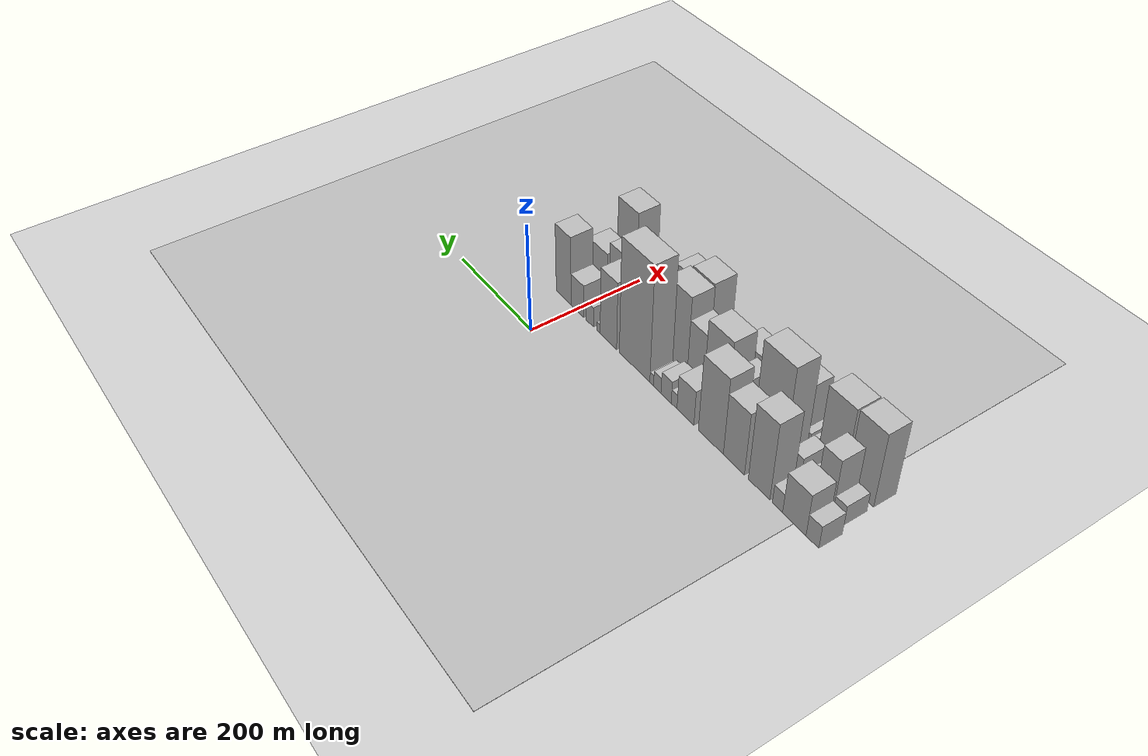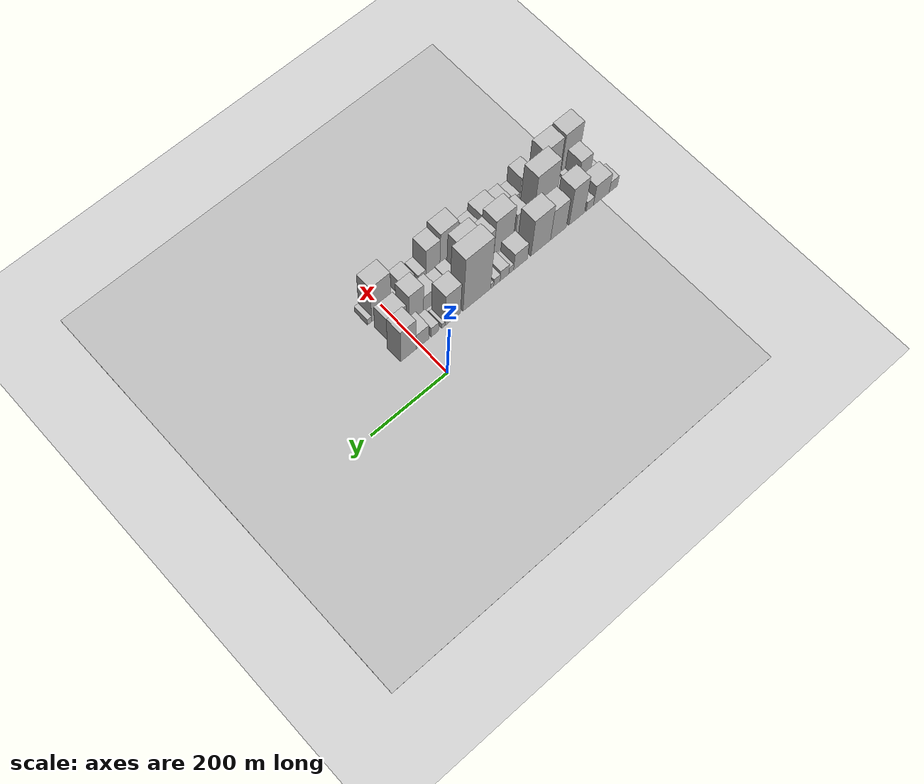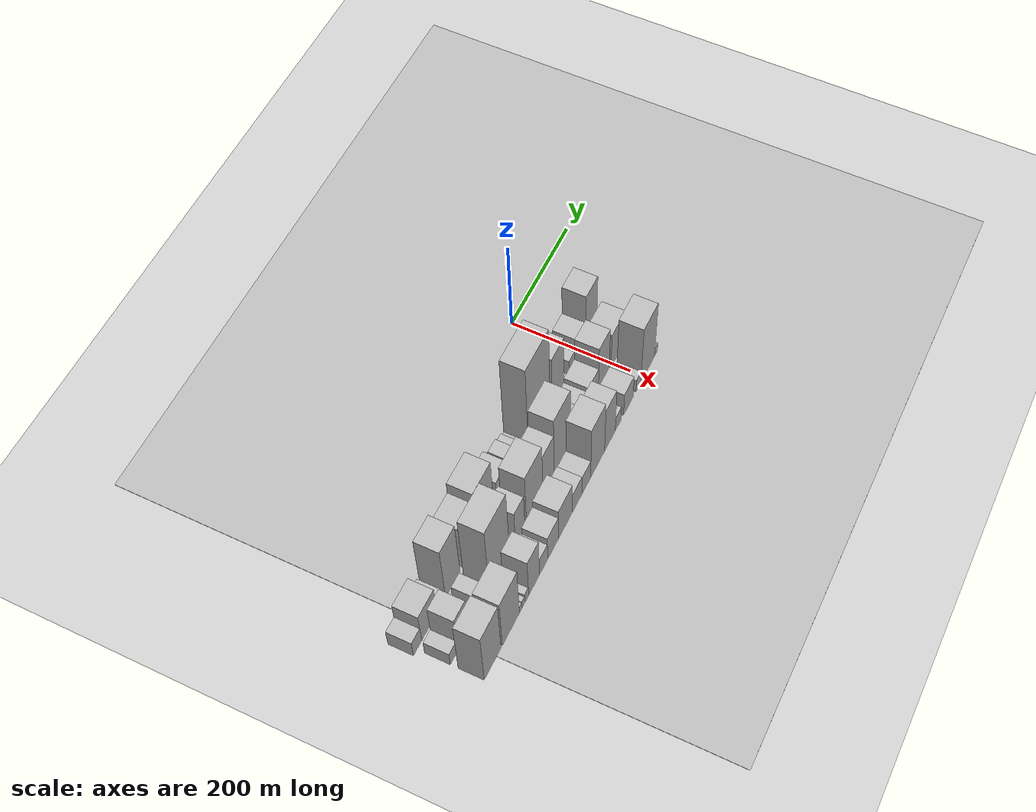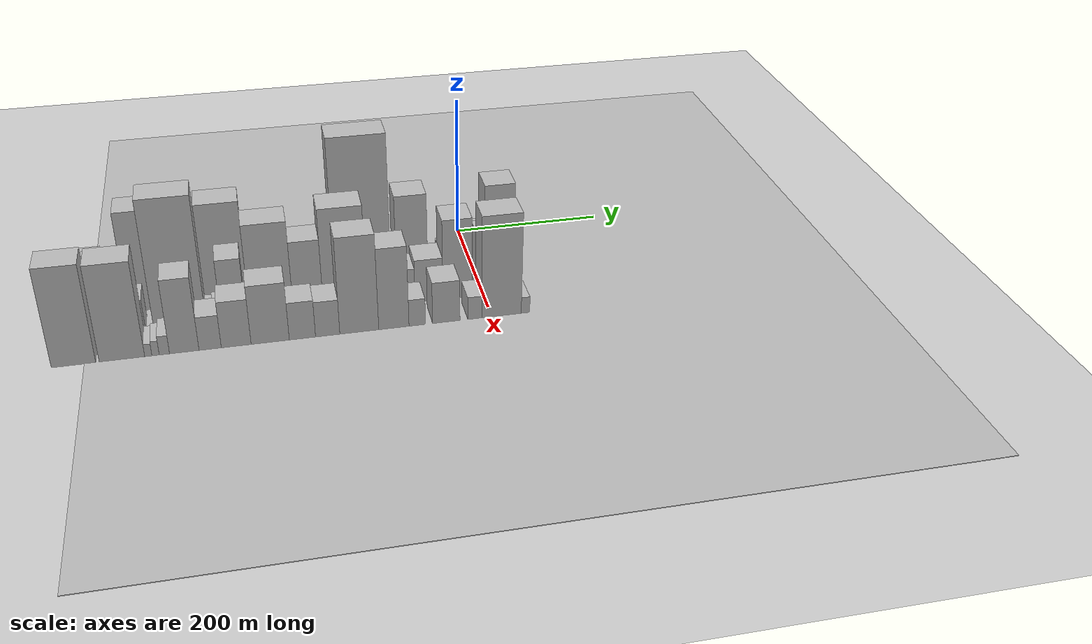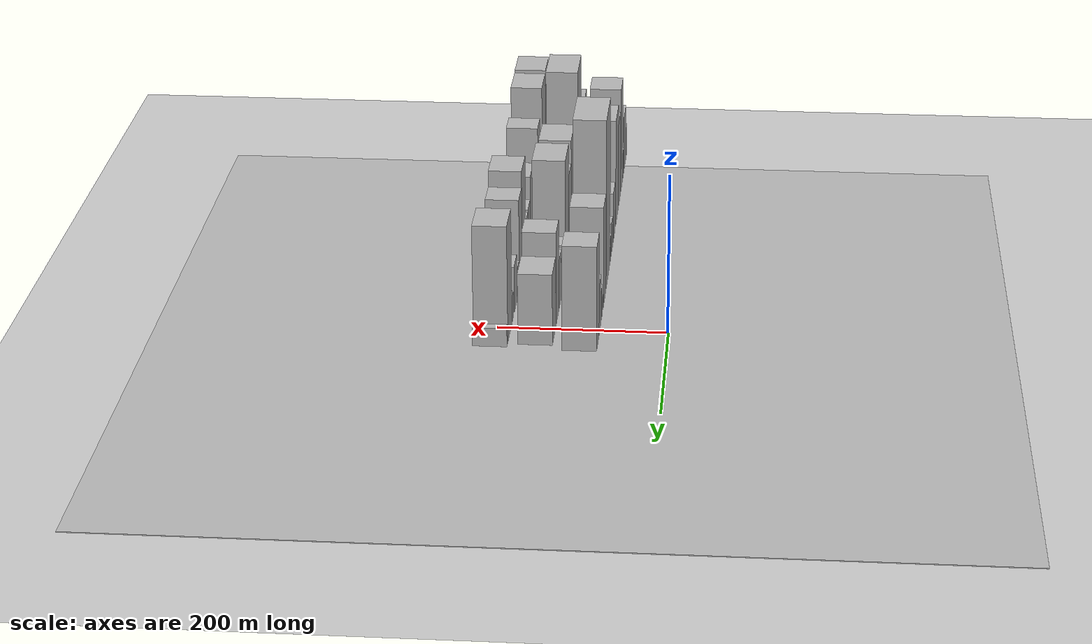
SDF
<sdf version="1.6">
 <world name="default">
  <include><name>ground_plane_1</name><uri>model://HANNAS_ground_plane</uri></include>
  <include>
   <name>ground_plane_2</name>
   <uri>model://HANNAS_ground_plane</uri>
   <pose>100 0 0  0 0 0</pose>
  </include>
  <model name="building_1">
   <static>1</static>
   <pose>100.0000 -535.8073 0 0.000000 0.000000 0.000000</pose>
   <link name="link">
    <pose>0 0 21.00 0 0 0</pose>
    <collision name="collision"><geometry><box><size>40.0000 24.3854 42.0000</size></box></geometry></collision>
    <visual name="visual">
     <cast_shadows>0</cast_shadows>
     <geometry><box><size>40.0000 24.3854 42.0000</size></box></geometry>
     <material>
      <script>
       <uri>model://HANNAS_wall/materials/scripts</uri>
       <uri>model://HANNAS_wall/materials/textures</uri>
       <name>vrc/HANNAS_wall</name>
      </script>
     </material>
    </visual>
   </link>
  </model>
  <model name="building_2">
   <static>1</static>
   <pose>100.0000 -500.7640 0 0.000000 0.000000 0.000000</pose>
   <link name="link">
    <pose>0 0 39.00 0 0 0</pose>
    <collision name="collision"><geometry><box><size>40.0000 45.7012 78.0000</size></box></geometry></collision>
    <visual name="visual">
     <cast_shadows>0</cast_shadows>
     <geometry><box><size>40.0000 45.7012 78.0000</size></box></geometry>
     <material>
      <script>
       <uri>model://HANNAS_wall/materials/scripts</uri>
       <uri>model://HANNAS_wall/materials/textures</uri>
       <name>vrc/HANNAS_wall</name>
      </script>
     </material>
    </visual>
   </link>
  </model>
  <model name="building_3">
   <static>1</static>
   <pose>100.0000 -467.7036 0 0.000000 0.000000 0.000000</pose>
   <link name="link">
    <pose>0 0 18.00 0 0 0</pose>
    <collision name="collision"><geometry><box><size>40.0000 20.4196 36.0000</size></box></geometry></collision>
    <visual name="visual">
     <cast_shadows>0</cast_shadows>
     <geometry><box><size>40.0000 20.4196 36.0000</size></box></geometry>
     <material>
      <script>
       <uri>model://HANNAS_wall/materials/scripts</uri>
       <uri>model://HANNAS_wall/materials/textures</uri>
       <name>vrc/HANNAS_wall</name>
      </script>
     </material>
    </visual>
   </link>
  </model>
  <model name="building_4">
   <static>1</static>
   <pose>100.0000 -430.3837 0 0.000000 0.000000 0.000000</pose>
   <link name="link">
    <pose>0 0 72.00 0 0 0</pose>
    <collision name="collision"><geometry><box><size>40.0000 44.2201 144.0000</size></box></geometry></collision>
    <visual name="visual">
     <cast_shadows>0</cast_shadows>
     <geometry><box><size>40.0000 44.2201 144.0000</size></box></geometry>
     <material>
      <script>
       <uri>model://HANNAS_wall/materials/scripts</uri>
       <uri>model://HANNAS_wall/materials/textures</uri>
       <name>vrc/HANNAS_wall</name>
      </script>
     </material>
    </visual>
   </link>
  </model>
  <model name="building_5">
   <static>1</static>
   <pose>100.0000 -377.8752 0 0.000000 0.000000 0.000000</pose>
   <link name="link">
    <pose>0 0 58.50 0 0 0</pose>
    <collision name="collision"><geometry><box><size>40.0000 44.7969 117.0000</size></box></geometry></collision>
    <visual name="visual">
     <cast_shadows>0</cast_shadows>
     <geometry><box><size>40.0000 44.7969 117.0000</size></box></geometry>
     <material>
      <script>
       <uri>model://HANNAS_wall/materials/scripts</uri>
       <uri>model://HANNAS_wall/materials/textures</uri>
       <name>vrc/HANNAS_wall</name>
      </script>
     </material>
    </visual>
   </link>
  </model>
  <model name="building_6">
   <static>1</static>
   <pose>100.0000 -328.0431 0 0.000000 0.000000 0.000000</pose>
   <link name="link">
    <pose>0 0 72.00 0 0 0</pose>
    <collision name="collision"><geometry><box><size>40.0000 54.8673 144.0000</size></box></geometry></collision>
    <visual name="visual">
     <cast_shadows>0</cast_shadows>
     <geometry><box><size>40.0000 54.8673 144.0000</size></box></geometry>
     <material>
      <script>
       <uri>model://HANNAS_wall/materials/scripts</uri>
       <uri>model://HANNAS_wall/materials/textures</uri>
       <name>vrc/HANNAS_wall</name>
      </script>
     </material>
    </visual>
   </link>
  </model>
  <model name="building_7">
   <static>1</static>
   <pose>100.0000 -271.3371 0 0.000000 0.000000 0.000000</pose>
   <link name="link">
    <pose>0 0 33.00 0 0 0</pose>
    <collision name="collision"><geometry><box><size>40.0000 38.5446 66.0000</size></box></geometry></collision>
    <visual name="visual">
     <cast_shadows>0</cast_shadows>
     <geometry><box><size>40.0000 38.5446 66.0000</size></box></geometry>
     <material>
      <script>
       <uri>model://HANNAS_wall/materials/scripts</uri>
       <uri>model://HANNAS_wall/materials/textures</uri>
       <name>vrc/HANNAS_wall</name>
      </script>
     </material>
    </visual>
   </link>
  </model>
  <model name="building_8">
   <static>1</static>
   <pose>100.0000 -245.4018 0 0.000000 0.000000 0.000000</pose>
   <link name="link">
    <pose>0 0 13.50 0 0 0</pose>
    <collision name="collision"><geometry><box><size>40.0000 13.3261 27.0000</size></box></geometry></collision>
    <visual name="visual">
     <cast_shadows>0</cast_shadows>
     <geometry><box><size>40.0000 13.3261 27.0000</size></box></geometry>
     <material>
      <script>
       <uri>model://HANNAS_wall/materials/scripts</uri>
       <uri>model://HANNAS_wall/materials/textures</uri>
       <name>vrc/HANNAS_wall</name>
      </script>
     </material>
    </visual>
   </link>
  </model>
  <model name="building_9">
   <static>1</static>
   <pose>100.0000 -226.7744 0 0.000000 0.000000 0.000000</pose>
   <link name="link">
    <pose>0 0 21.00 0 0 0</pose>
    <collision name="collision"><geometry><box><size>40.0000 23.9287 42.0000</size></box></geometry></collision>
    <visual name="visual">
     <cast_shadows>0</cast_shadows>
     <geometry><box><size>40.0000 23.9287 42.0000</size></box></geometry>
     <material>
      <script>
       <uri>model://HANNAS_wall/materials/scripts</uri>
       <uri>model://HANNAS_wall/materials/textures</uri>
       <name>vrc/HANNAS_wall</name>
      </script>
     </material>
    </visual>
   </link>
  </model>
  <model name="building_10">
   <static>1</static>
   <pose>100.0000 -205.9843 0 0.000000 0.000000 0.000000</pose>
   <link name="link">
    <pose>0 0 15.00 0 0 0</pose>
    <collision name="collision"><geometry><box><size>40.0000 17.6515 30.0000</size></box></geometry></collision>
    <visual name="visual">
     <cast_shadows>0</cast_shadows>
     <geometry><box><size>40.0000 17.6515 30.0000</size></box></geometry>
     <material>
      <script>
       <uri>model://HANNAS_wall/materials/scripts</uri>
       <uri>model://HANNAS_wall/materials/textures</uri>
       <name>vrc/HANNAS_wall</name>
      </script>
     </material>
    </visual>
   </link>
  </model>
  <model name="building_11">
   <static>1</static>
   <pose>100.0000 -192.7051 0 0.000000 0.000000 0.000000</pose>
   <link name="link">
    <pose>0 0 10.50 0 0 0</pose>
    <collision name="collision"><geometry><box><size>40.0000 8.9070 21.0000</size></box></geometry></collision>
    <visual name="visual">
     <cast_shadows>0</cast_shadows>
     <geometry><box><size>40.0000 8.9070 21.0000</size></box></geometry>
     <material>
      <script>
       <uri>model://HANNAS_wall/materials/scripts</uri>
       <uri>model://HANNAS_wall/materials/textures</uri>
       <name>vrc/HANNAS_wall</name>
      </script>
     </material>
    </visual>
   </link>
  </model>
  <model name="building_12">
   <static>1</static>
   <pose>100.0000 -150.8163 0 0.000000 0.000000 0.000000</pose>
   <link name="link">
    <pose>0 0 109.50 0 0 0</pose>
    <collision name="collision"><geometry><box><size>40.0000 74.8706 219.0000</size></box></geometry></collision>
    <visual name="visual">
     <cast_shadows>0</cast_shadows>
     <geometry><box><size>40.0000 74.8706 219.0000</size></box></geometry>
     <material>
      <script>
       <uri>model://HANNAS_wall/materials/scripts</uri>
       <uri>model://HANNAS_wall/materials/textures</uri>
       <name>vrc/HANNAS_wall</name>
      </script>
     </material>
    </visual>
   </link>
  </model>
  <model name="building_13">
   <static>1</static>
   <pose>100.0000 -85.3873 0 0.000000 0.000000 0.000000</pose>
   <link name="link">
    <pose>0 0 64.50 0 0 0</pose>
    <collision name="collision"><geometry><box><size>40.0000 41.9874 129.0000</size></box></geometry></collision>
    <visual name="visual">
     <cast_shadows>0</cast_shadows>
     <geometry><box><size>40.0000 41.9874 129.0000</size></box></geometry>
     <material>
      <script>
       <uri>model://HANNAS_wall/materials/scripts</uri>
       <uri>model://HANNAS_wall/materials/textures</uri>
       <name>vrc/HANNAS_wall</name>
      </script>
     </material>
    </visual>
   </link>
  </model>
  <model name="building_14">
   <static>1</static>
   <pose>100.0000 -60.3403 0 0.000000 0.000000 0.000000</pose>
   <link name="link">
    <pose>0 0 9.00 0 0 0</pose>
    <collision name="collision"><geometry><box><size>40.0000 8.1066 18.0000</size></box></geometry></collision>
    <visual name="visual">
     <cast_shadows>0</cast_shadows>
     <geometry><box><size>40.0000 8.1066 18.0000</size></box></geometry>
     <material>
      <script>
       <uri>model://HANNAS_wall/materials/scripts</uri>
       <uri>model://HANNAS_wall/materials/textures</uri>
       <name>vrc/HANNAS_wall</name>
      </script>
     </material>
    </visual>
   </link>
  </model>
  <model name="building_15">
   <static>1</static>
   <pose>100.0000 -37.4372 0 0.000000 0.000000 0.000000</pose>
   <link name="link">
    <pose>0 0 19.50 0 0 0</pose>
    <collision name="collision"><geometry><box><size>40.0000 19.6997 39.0000</size></box></geometry></collision>
    <visual name="visual">
     <cast_shadows>0</cast_shadows>
     <geometry><box><size>40.0000 19.6997 39.0000</size></box></geometry>
     <material>
      <script>
       <uri>model://HANNAS_wall/materials/scripts</uri>
       <uri>model://HANNAS_wall/materials/textures</uri>
       <name>vrc/HANNAS_wall</name>
      </script>
     </material>
    </visual>
   </link>
  </model>
  <model name="building_16">
   <static>1</static>
   <pose>100.0000 -4.4904 0 0.000000 0.000000 0.000000</pose>
   <link name="link">
    <pose>0 0 31.50 0 0 0</pose>
    <collision name="collision"><geometry><box><size>40.0000 34.1938 63.0000</size></box></geometry></collision>
    <visual name="visual">
     <cast_shadows>0</cast_shadows>
     <geometry><box><size>40.0000 34.1938 63.0000</size></box></geometry>
     <material>
      <script>
       <uri>model://HANNAS_wall/materials/scripts</uri>
       <uri>model://HANNAS_wall/materials/textures</uri>
       <name>vrc/HANNAS_wall</name>
      </script>
     </material>
    </visual>
   </link>
  </model>
  <model name="building_17">
   <static>1</static>
   <pose>100.0000 32.9341 0 0.000000 0.000000 0.000000</pose>
   <link name="link">
    <pose>0 0 66.00 0 0 0</pose>
    <collision name="collision"><geometry><box><size>40.0000 40.6553 132.0000</size></box></geometry></collision>
    <visual name="visual">
     <cast_shadows>0</cast_shadows>
     <geometry><box><size>40.0000 40.6553 132.0000</size></box></geometry>
     <material>
      <script>
       <uri>model://HANNAS_wall/materials/scripts</uri>
       <uri>model://HANNAS_wall/materials/textures</uri>
       <name>vrc/HANNAS_wall</name>
      </script>
     </material>
    </visual>
   </link>
  </model>
  <model name="building_35">
   <static>1</static>
   <pose>152.0000 -527.2593 0 0.000000 0.000000 0.000000</pose>
   <link name="link">
    <pose>0 0 18.00 0 0 0</pose>
    <collision name="collision"><geometry><box><size>40.0000 21.4814 36.0000</size></box></geometry></collision>
    <visual name="visual">
     <cast_shadows>0</cast_shadows>
     <geometry><box><size>40.0000 21.4814 36.0000</size></box></geometry>
     <material>
      <script>
       <uri>model://HANNAS_wall/materials/scripts</uri>
       <uri>model://HANNAS_wall/materials/textures</uri>
       <name>vrc/HANNAS_wall</name>
      </script>
     </material>
    </visual>
   </link>
  </model>
  <model name="building_36">
   <static>1</static>
   <pose>152.0000 -499.8316 0 0.000000 0.000000 0.000000</pose>
   <link name="link">
    <pose>0 0 51.00 0 0 0</pose>
    <collision name="collision"><geometry><box><size>40.0000 33.3740 102.0000</size></box></geometry></collision>
    <visual name="visual">
     <cast_shadows>0</cast_shadows>
     <geometry><box><size>40.0000 33.3740 102.0000</size></box></geometry>
     <material>
      <script>
       <uri>model://HANNAS_wall/materials/scripts</uri>
       <uri>model://HANNAS_wall/materials/textures</uri>
       <name>vrc/HANNAS_wall</name>
      </script>
     </material>
    </visual>
   </link>
  </model>
  <model name="building_37">
   <static>1</static>
   <pose>152.0000 -474.8939 0 0.000000 0.000000 0.000000</pose>
   <link name="link">
    <pose>0 0 15.00 0 0 0</pose>
    <collision name="collision"><geometry><box><size>40.0000 16.5013 30.0000</size></box></geometry></collision>
    <visual name="visual">
     <cast_shadows>0</cast_shadows>
     <geometry><box><size>40.0000 16.5013 30.0000</size></box></geometry>
     <material>
      <script>
       <uri>model://HANNAS_wall/materials/scripts</uri>
       <uri>model://HANNAS_wall/materials/textures</uri>
       <name>vrc/HANNAS_wall</name>
      </script>
     </material>
    </visual>
   </link>
  </model>
  <model name="building_38">
   <static>1</static>
   <pose>152.0000 -458.0006 0 0.000000 0.000000 0.000000</pose>
   <link name="link">
    <pose>0 0 10.50 0 0 0</pose>
    <collision name="collision"><geometry><box><size>40.0000 9.2854 21.0000</size></box></geometry></collision>
    <visual name="visual">
     <cast_shadows>0</cast_shadows>
     <geometry><box><size>40.0000 9.2854 21.0000</size></box></geometry>
     <material>
      <script>
       <uri>model://HANNAS_wall/materials/scripts</uri>
       <uri>model://HANNAS_wall/materials/textures</uri>
       <name>vrc/HANNAS_wall</name>
      </script>
     </material>
    </visual>
   </link>
  </model>
  <model name="building_39">
   <static>1</static>
   <pose>152.0000 -441.1442 0 0.000000 0.000000 0.000000</pose>
   <link name="link">
    <pose>0 0 24.00 0 0 0</pose>
    <collision name="collision"><geometry><box><size>40.0000 24.4274 48.0000</size></box></geometry></collision>
    <visual name="visual">
     <cast_shadows>0</cast_shadows>
     <geometry><box><size>40.0000 24.4274 48.0000</size></box></geometry>
     <material>
      <script>
       <uri>model://HANNAS_wall/materials/scripts</uri>
       <uri>model://HANNAS_wall/materials/textures</uri>
       <name>vrc/HANNAS_wall</name>
      </script>
     </material>
    </visual>
   </link>
  </model>
  <model name="building_40">
   <static>1</static>
   <pose>152.0000 -386.8442 0 0.000000 0.000000 0.000000</pose>
   <link name="link">
    <pose>0 0 93.00 0 0 0</pose>
    <collision name="collision"><geometry><box><size>40.0000 64.1726 186.0000</size></box></geometry></collision>
    <visual name="visual">
     <cast_shadows>0</cast_shadows>
     <geometry><box><size>40.0000 64.1726 186.0000</size></box></geometry>
     <material>
      <script>
       <uri>model://HANNAS_wall/materials/scripts</uri>
       <uri>model://HANNAS_wall/materials/textures</uri>
       <name>vrc/HANNAS_wall</name>
      </script>
     </material>
    </visual>
   </link>
  </model>
  <model name="building_41">
   <static>1</static>
   <pose>152.0000 -350.4336 0 0.000000 0.000000 0.000000</pose>
   <link name="link">
    <pose>0 0 10.50 0 0 0</pose>
    <collision name="collision"><geometry><box><size>40.0000 8.6485 21.0000</size></box></geometry></collision>
    <visual name="visual">
     <cast_shadows>0</cast_shadows>
     <geometry><box><size>40.0000 8.6485 21.0000</size></box></geometry>
     <material>
      <script>
       <uri>model://HANNAS_wall/materials/scripts</uri>
       <uri>model://HANNAS_wall/materials/textures</uri>
       <name>vrc/HANNAS_wall</name>
      </script>
     </material>
    </visual>
   </link>
  </model>
  <model name="building_42">
   <static>1</static>
   <pose>152.0000 -341.1399 0 0.000000 0.000000 0.000000</pose>
   <link name="link">
    <pose>0 0 12.00 0 0 0</pose>
    <collision name="collision"><geometry><box><size>40.0000 9.9389 24.0000</size></box></geometry></collision>
    <visual name="visual">
     <cast_shadows>0</cast_shadows>
     <geometry><box><size>40.0000 9.9389 24.0000</size></box></geometry>
     <material>
      <script>
       <uri>model://HANNAS_wall/materials/scripts</uri>
       <uri>model://HANNAS_wall/materials/textures</uri>
       <name>vrc/HANNAS_wall</name>
      </script>
     </material>
    </visual>
   </link>
  </model>
  <model name="building_43">
   <static>1</static>
   <pose>152.0000 -320.8174 0 0.000000 0.000000 0.000000</pose>
   <link name="link">
    <pose>0 0 46.50 0 0 0</pose>
    <collision name="collision"><geometry><box><size>40.0000 30.7062 93.0000</size></box></geometry></collision>
    <visual name="visual">
     <cast_shadows>0</cast_shadows>
     <geometry><box><size>40.0000 30.7062 93.0000</size></box></geometry>
     <material>
      <script>
       <uri>model://HANNAS_wall/materials/scripts</uri>
       <uri>model://HANNAS_wall/materials/textures</uri>
       <name>vrc/HANNAS_wall</name>
      </script>
     </material>
    </visual>
   </link>
  </model>
  <model name="building_44">
   <static>1</static>
   <pose>152.0000 -273.1800 0 0.000000 0.000000 0.000000</pose>
   <link name="link">
    <pose>0 0 69.00 0 0 0</pose>
    <collision name="collision"><geometry><box><size>40.0000 54.5685 138.0000</size></box></geometry></collision>
    <visual name="visual">
     <cast_shadows>0</cast_shadows>
     <geometry><box><size>40.0000 54.5685 138.0000</size></box></geometry>
     <material>
      <script>
       <uri>model://HANNAS_wall/materials/scripts</uri>
       <uri>model://HANNAS_wall/materials/textures</uri>
       <name>vrc/HANNAS_wall</name>
      </script>
     </material>
    </visual>
   </link>
  </model>
  <model name="building_45">
   <static>1</static>
   <pose>152.0000 -226.9275 0 0.000000 0.000000 0.000000</pose>
   <link name="link">
    <pose>0 0 54.00 0 0 0</pose>
    <collision name="collision"><geometry><box><size>40.0000 37.9365 108.0000</size></box></geometry></collision>
    <visual name="visual">
     <cast_shadows>0</cast_shadows>
     <geometry><box><size>40.0000 37.9365 108.0000</size></box></geometry>
     <material>
      <script>
       <uri>model://HANNAS_wall/materials/scripts</uri>
       <uri>model://HANNAS_wall/materials/textures</uri>
       <name>vrc/HANNAS_wall</name>
      </script>
     </material>
    </visual>
   </link>
  </model>
  <model name="building_46">
   <static>1</static>
   <pose>152.0000 -180.2325 0 0.000000 0.000000 0.000000</pose>
   <link name="link">
    <pose>0 0 75.00 0 0 0</pose>
    <collision name="collision"><geometry><box><size>40.0000 55.4535 150.0000</size></box></geometry></collision>
    <visual name="visual">
     <cast_shadows>0</cast_shadows>
     <geometry><box><size>40.0000 55.4535 150.0000</size></box></geometry>
     <material>
      <script>
       <uri>model://HANNAS_wall/materials/scripts</uri>
       <uri>model://HANNAS_wall/materials/textures</uri>
       <name>vrc/HANNAS_wall</name>
      </script>
     </material>
    </visual>
   </link>
  </model>
  <model name="building_47">
   <static>1</static>
   <pose>152.0000 -132.8605 0 0.000000 0.000000 0.000000</pose>
   <link name="link">
    <pose>0 0 27.00 0 0 0</pose>
    <collision name="collision"><geometry><box><size>40.0000 27.2906 54.0000</size></box></geometry></collision>
    <visual name="visual">
     <cast_shadows>0</cast_shadows>
     <geometry><box><size>40.0000 27.2906 54.0000</size></box></geometry>
     <material>
      <script>
       <uri>model://HANNAS_wall/materials/scripts</uri>
       <uri>model://HANNAS_wall/materials/textures</uri>
       <name>vrc/HANNAS_wall</name>
      </script>
     </material>
    </visual>
   </link>
  </model>
  <model name="building_48">
   <static>1</static>
   <pose>152.0000 -104.7523 0 0.000000 0.000000 0.000000</pose>
   <link name="link">
    <pose>0 0 25.50 0 0 0</pose>
    <collision name="collision"><geometry><box><size>40.0000 28.9257 51.0000</size></box></geometry></collision>
    <visual name="visual">
     <cast_shadows>0</cast_shadows>
     <geometry><box><size>40.0000 28.9257 51.0000</size></box></geometry>
     <material>
      <script>
       <uri>model://HANNAS_wall/materials/scripts</uri>
       <uri>model://HANNAS_wall/materials/textures</uri>
       <name>vrc/HANNAS_wall</name>
      </script>
     </material>
    </visual>
   </link>
  </model>
  <model name="building_49">
   <static>1</static>
   <pose>152.0000 -72.0137 0 0.000000 0.000000 0.000000</pose>
   <link name="link">
    <pose>0 0 31.50 0 0 0</pose>
    <collision name="collision"><geometry><box><size>40.0000 36.5515 63.0000</size></box></geometry></collision>
    <visual name="visual">
     <cast_shadows>0</cast_shadows>
     <geometry><box><size>40.0000 36.5515 63.0000</size></box></geometry>
     <material>
      <script>
       <uri>model://HANNAS_wall/materials/scripts</uri>
       <uri>model://HANNAS_wall/materials/textures</uri>
       <name>vrc/HANNAS_wall</name>
      </script>
     </material>
    </visual>
   </link>
  </model>
  <model name="building_50">
   <static>1</static>
   <pose>152.0000 -34.3291 0 0.000000 0.000000 0.000000</pose>
   <link name="link">
    <pose>0 0 58.50 0 0 0</pose>
    <collision name="collision"><geometry><box><size>40.0000 38.8177 117.0000</size></box></geometry></collision>
    <visual name="visual">
     <cast_shadows>0</cast_shadows>
     <geometry><box><size>40.0000 38.8177 117.0000</size></box></geometry>
     <material>
      <script>
       <uri>model://HANNAS_wall/materials/scripts</uri>
       <uri>model://HANNAS_wall/materials/textures</uri>
       <name>vrc/HANNAS_wall</name>
      </script>
     </material>
    </visual>
   </link>
  </model>
  <model name="building_51">
   <static>1</static>
   <pose>152.0000 16.7589 0 0.000000 0.000000 0.000000</pose>
   <link name="link">
    <pose>0 0 45.00 0 0 0</pose>
    <collision name="collision"><geometry><box><size>40.0000 49.3583 90.0000</size></box></geometry></collision>
    <visual name="visual">
     <cast_shadows>0</cast_shadows>
     <geometry><box><size>40.0000 49.3583 90.0000</size></box></geometry>
     <material>
      <script>
       <uri>model://HANNAS_wall/materials/scripts</uri>
       <uri>model://HANNAS_wall/materials/textures</uri>
       <name>vrc/HANNAS_wall</name>
      </script>
     </material>
    </visual>
   </link>
  </model>
  <model name="building_71">
   <static>1</static>
   <pose>204.0000 -512.3213 0 0.000000 0.000000 0.000000</pose>
   <link name="link">
    <pose>0 0 69.00 0 0 0</pose>
    <collision name="collision"><geometry><box><size>40.0000 51.3574 138.0000</size></box></geometry></collision>
    <visual name="visual">
     <cast_shadows>0</cast_shadows>
     <geometry><box><size>40.0000 51.3574 138.0000</size></box></geometry>
     <material>
      <script>
       <uri>model://HANNAS_wall/materials/scripts</uri>
       <uri>model://HANNAS_wall/materials/textures</uri>
       <name>vrc/HANNAS_wall</name>
      </script>
     </material>
    </visual>
   </link>
  </model>
  <model name="building_72">
   <static>1</static>
   <pose>204.0000 -455.9773 0 0.000000 0.000000 0.000000</pose>
   <link name="link">
    <pose>0 0 67.50 0 0 0</pose>
    <collision name="collision"><geometry><box><size>40.0000 53.3305 135.0000</size></box></geometry></collision>
    <visual name="visual">
     <cast_shadows>0</cast_shadows>
     <geometry><box><size>40.0000 53.3305 135.0000</size></box></geometry>
     <material>
      <script>
       <uri>model://HANNAS_wall/materials/scripts</uri>
       <uri>model://HANNAS_wall/materials/textures</uri>
       <name>vrc/HANNAS_wall</name>
      </script>
     </material>
    </visual>
   </link>
  </model>
  <model name="building_73">
   <static>1</static>
   <pose>204.0000 -425.0841 0 0.000000 0.000000 0.000000</pose>
   <link name="link">
    <pose>0 0 9.00 0 0 0</pose>
    <collision name="collision"><geometry><box><size>40.0000 8.4559 18.0000</size></box></geometry></collision>
    <visual name="visual">
     <cast_shadows>0</cast_shadows>
     <geometry><box><size>40.0000 8.4559 18.0000</size></box></geometry>
     <material>
      <script>
       <uri>model://HANNAS_wall/materials/scripts</uri>
       <uri>model://HANNAS_wall/materials/textures</uri>
       <name>vrc/HANNAS_wall</name>
      </script>
     </material>
    </visual>
   </link>
  </model>
  <model name="building_74">
   <static>1</static>
   <pose>204.0000 -416.5333 0 0.000000 0.000000 0.000000</pose>
   <link name="link">
    <pose>0 0 10.50 0 0 0</pose>
    <collision name="collision"><geometry><box><size>40.0000 8.6456 21.0000</size></box></geometry></collision>
    <visual name="visual">
     <cast_shadows>0</cast_shadows>
     <geometry><box><size>40.0000 8.6456 21.0000</size></box></geometry>
     <material>
      <script>
       <uri>model://HANNAS_wall/materials/scripts</uri>
       <uri>model://HANNAS_wall/materials/textures</uri>
       <name>vrc/HANNAS_wall</name>
      </script>
     </material>
    </visual>
   </link>
  </model>
  <model name="building_75">
   <static>1</static>
   <pose>204.0000 -406.1018 0 0.000000 0.000000 0.000000</pose>
   <link name="link">
    <pose>0 0 13.50 0 0 0</pose>
    <collision name="collision"><geometry><box><size>40.0000 12.2173 27.0000</size></box></geometry></collision>
    <visual name="visual">
     <cast_shadows>0</cast_shadows>
     <geometry><box><size>40.0000 12.2173 27.0000</size></box></geometry>
     <material>
      <script>
       <uri>model://HANNAS_wall/materials/scripts</uri>
       <uri>model://HANNAS_wall/materials/textures</uri>
       <name>vrc/HANNAS_wall</name>
      </script>
     </material>
    </visual>
   </link>
  </model>
  <model name="building_76">
   <static>1</static>
   <pose>204.0000 -382.4525 0 0.000000 0.000000 0.000000</pose>
   <link name="link">
    <pose>0 0 52.50 0 0 0</pose>
    <collision name="collision"><geometry><box><size>40.0000 35.0812 105.0000</size></box></geometry></collision>
    <visual name="visual">
     <cast_shadows>0</cast_shadows>
     <geometry><box><size>40.0000 35.0812 105.0000</size></box></geometry>
     <material>
      <script>
       <uri>model://HANNAS_wall/materials/scripts</uri>
       <uri>model://HANNAS_wall/materials/textures</uri>
       <name>vrc/HANNAS_wall</name>
      </script>
     </material>
    </visual>
   </link>
  </model>
  <model name="building_77">
   <static>1</static>
   <pose>204.0000 -351.5602 0 0.000000 0.000000 0.000000</pose>
   <link name="link">
    <pose>0 0 24.00 0 0 0</pose>
    <collision name="collision"><geometry><box><size>40.0000 26.7034 48.0000</size></box></geometry></collision>
    <visual name="visual">
     <cast_shadows>0</cast_shadows>
     <geometry><box><size>40.0000 26.7034 48.0000</size></box></geometry>
     <material>
      <script>
       <uri>model://HANNAS_wall/materials/scripts</uri>
       <uri>model://HANNAS_wall/materials/textures</uri>
       <name>vrc/HANNAS_wall</name>
      </script>
     </material>
    </visual>
   </link>
  </model>
  <model name="building_78">
   <static>1</static>
   <pose>204.0000 -320.1837 0 0.000000 0.000000 0.000000</pose>
   <link name="link">
    <pose>0 0 33.00 0 0 0</pose>
    <collision name="collision"><geometry><box><size>40.0000 36.0496 66.0000</size></box></geometry></collision>
    <visual name="visual">
     <cast_shadows>0</cast_shadows>
     <geometry><box><size>40.0000 36.0496 66.0000</size></box></geometry>
     <material>
      <script>
       <uri>model://HANNAS_wall/materials/scripts</uri>
       <uri>model://HANNAS_wall/materials/textures</uri>
       <name>vrc/HANNAS_wall</name>
      </script>
     </material>
    </visual>
   </link>
  </model>
  <model name="building_79">
   <static>1</static>
   <pose>204.0000 -278.8998 0 0.000000 0.000000 0.000000</pose>
   <link name="link">
    <pose>0 0 42.00 0 0 0</pose>
    <collision name="collision"><geometry><box><size>40.0000 46.5181 84.0000</size></box></geometry></collision>
    <visual name="visual">
     <cast_shadows>0</cast_shadows>
     <geometry><box><size>40.0000 46.5181 84.0000</size></box></geometry>
     <material>
      <script>
       <uri>model://HANNAS_wall/materials/scripts</uri>
       <uri>model://HANNAS_wall/materials/textures</uri>
       <name>vrc/HANNAS_wall</name>
      </script>
     </material>
    </visual>
   </link>
  </model>
  <model name="building_80">
   <static>1</static>
   <pose>204.0000 -239.5134 0 0.000000 0.000000 0.000000</pose>
   <link name="link">
    <pose>0 0 27.00 0 0 0</pose>
    <collision name="collision"><geometry><box><size>40.0000 32.2547 54.0000</size></box></geometry></collision>
    <visual name="visual">
     <cast_shadows>0</cast_shadows>
     <geometry><box><size>40.0000 32.2547 54.0000</size></box></geometry>
     <material>
      <script>
       <uri>model://HANNAS_wall/materials/scripts</uri>
       <uri>model://HANNAS_wall/materials/textures</uri>
       <name>vrc/HANNAS_wall</name>
      </script>
     </material>
    </visual>
   </link>
  </model>
  <model name="building_81">
   <static>1</static>
   <pose>204.0000 -208.3445 0 0.000000 0.000000 0.000000</pose>
   <link name="link">
    <pose>0 0 25.50 0 0 0</pose>
    <collision name="collision"><geometry><box><size>40.0000 30.0831 51.0000</size></box></geometry></collision>
    <visual name="visual">
     <cast_shadows>0</cast_shadows>
     <geometry><box><size>40.0000 30.0831 51.0000</size></box></geometry>
     <material>
      <script>
       <uri>model://HANNAS_wall/materials/scripts</uri>
       <uri>model://HANNAS_wall/materials/textures</uri>
       <name>vrc/HANNAS_wall</name>
      </script>
     </material>
    </visual>
   </link>
  </model>
  <model name="building_82">
   <static>1</static>
   <pose>204.0000 -168.9880 0 0.000000 0.000000 0.000000</pose>
   <link name="link">
    <pose>0 0 69.00 0 0 0</pose>
    <collision name="collision"><geometry><box><size>40.0000 48.6300 138.0000</size></box></geometry></collision>
    <visual name="visual">
     <cast_shadows>0</cast_shadows>
     <geometry><box><size>40.0000 48.6300 138.0000</size></box></geometry>
     <material>
      <script>
       <uri>model://HANNAS_wall/materials/scripts</uri>
       <uri>model://HANNAS_wall/materials/textures</uri>
       <name>vrc/HANNAS_wall</name>
      </script>
     </material>
    </visual>
   </link>
  </model>
  <model name="building_83">
   <static>1</static>
   <pose>204.0000 -125.5895 0 0.000000 0.000000 0.000000</pose>
   <link name="link">
    <pose>0 0 58.50 0 0 0</pose>
    <collision name="collision"><geometry><box><size>40.0000 38.1671 117.0000</size></box></geometry></collision>
    <visual name="visual">
     <cast_shadows>0</cast_shadows>
     <geometry><box><size>40.0000 38.1671 117.0000</size></box></geometry>
     <material>
      <script>
       <uri>model://HANNAS_wall/materials/scripts</uri>
       <uri>model://HANNAS_wall/materials/textures</uri>
       <name>vrc/HANNAS_wall</name>
      </script>
     </material>
    </visual>
   </link>
  </model>
  <model name="building_84">
   <static>1</static>
   <pose>204.0000 -96.0280 0 0.000000 0.000000 0.000000</pose>
   <link name="link">
    <pose>0 0 19.50 0 0 0</pose>
    <collision name="collision"><geometry><box><size>40.0000 20.9558 39.0000</size></box></geometry></collision>
    <visual name="visual">
     <cast_shadows>0</cast_shadows>
     <geometry><box><size>40.0000 20.9558 39.0000</size></box></geometry>
     <material>
      <script>
       <uri>model://HANNAS_wall/materials/scripts</uri>
       <uri>model://HANNAS_wall/materials/textures</uri>
       <name>vrc/HANNAS_wall</name>
      </script>
     </material>
    </visual>
   </link>
  </model>
  <model name="building_85">
   <static>1</static>
   <pose>204.0000 -58.9765 0 0.000000 0.000000 0.000000</pose>
   <link name="link">
    <pose>0 0 30.00 0 0 0</pose>
    <collision name="collision"><geometry><box><size>40.0000 35.1472 60.0000</size></box></geometry></collision>
    <visual name="visual">
     <cast_shadows>0</cast_shadows>
     <geometry><box><size>40.0000 35.1472 60.0000</size></box></geometry>
     <material>
      <script>
       <uri>model://HANNAS_wall/materials/scripts</uri>
       <uri>model://HANNAS_wall/materials/textures</uri>
       <name>vrc/HANNAS_wall</name>
      </script>
     </material>
    </visual>
   </link>
  </model>
  <model name="building_86">
   <static>1</static>
   <pose>204.0000 -22.3060 0 0.000000 0.000000 0.000000</pose>
   <link name="link">
    <pose>0 0 16.50 0 0 0</pose>
    <collision name="collision"><geometry><box><size>40.0000 18.1936 33.0000</size></box></geometry></collision>
    <visual name="visual">
     <cast_shadows>0</cast_shadows>
     <geometry><box><size>40.0000 18.1936 33.0000</size></box></geometry>
     <material>
      <script>
       <uri>model://HANNAS_wall/materials/scripts</uri>
       <uri>model://HANNAS_wall/materials/textures</uri>
       <name>vrc/HANNAS_wall</name>
      </script>
     </material>
    </visual>
   </link>
  </model>
  <model name="building_87">
   <static>1</static>
   <pose>204.0000 12.4140 0 0.000000 0.000000 0.000000</pose>
   <link name="link">
    <pose>0 0 73.50 0 0 0</pose>
    <collision name="collision"><geometry><box><size>40.0000 51.2464 147.0000</size></box></geometry></collision>
    <visual name="visual">
     <cast_shadows>0</cast_shadows>
     <geometry><box><size>40.0000 51.2464 147.0000</size></box></geometry>
     <material>
      <script>
       <uri>model://HANNAS_wall/materials/scripts</uri>
       <uri>model://HANNAS_wall/materials/textures</uri>
       <name>vrc/HANNAS_wall</name>
      </script>
     </material>
    </visual>
   </link>
  </model>
  <model name="building_88">
   <static>1</static>
   <pose>204.0000 43.5739 0 0.000000 0.000000 0.000000</pose>
   <link name="link">
    <pose>0 0 12.00 0 0 0</pose>
    <collision name="collision"><geometry><box><size>40.0000 11.0734 24.0000</size></box></geometry></collision>
    <visual name="visual">
     <cast_shadows>0</cast_shadows>
     <geometry><box><size>40.0000 11.0734 24.0000</size></box></geometry>
     <material>
      <script>
       <uri>model://HANNAS_wall/materials/scripts</uri>
       <uri>model://HANNAS_wall/materials/textures</uri>
       <name>vrc/HANNAS_wall</name>
      </script>
     </material>
    </visual>
   </link>
  </model>
 </world>
</sdf>
